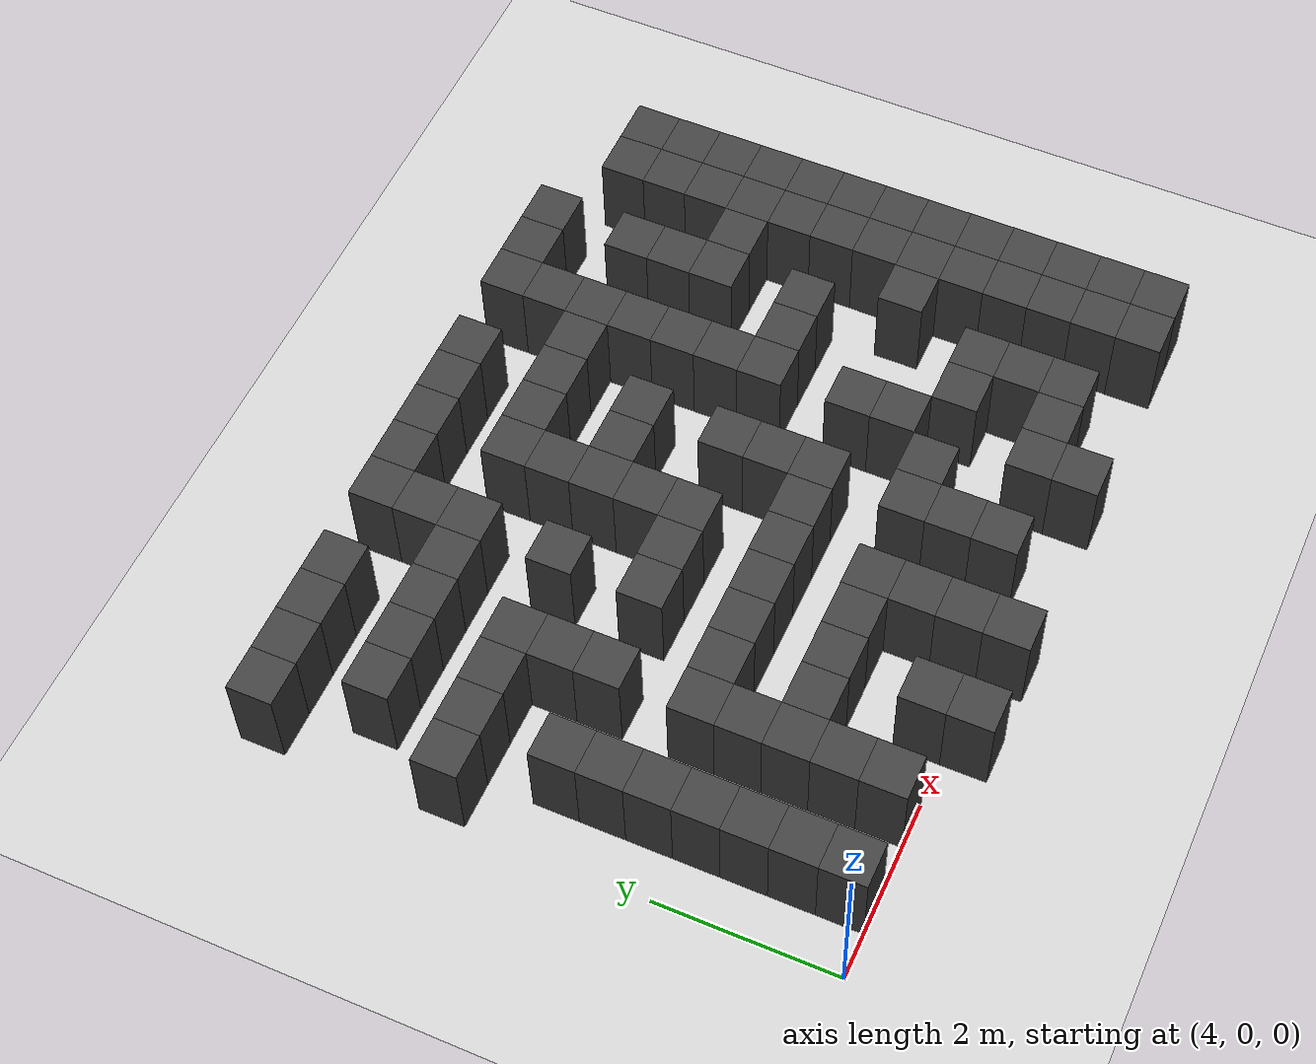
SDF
<sdf version="1.7">
 <world name="map_18332">
  <model name="ground_plane">
   <static>true</static>
   <link name="link">
    <collision name="collision">
     <geometry><plane><normal>0 0 1</normal><size>200 200</size></plane></geometry>
    </collision>
    <visual name="visual">
     <geometry><plane><normal>0 0 1</normal><size>200 200</size></plane></geometry>
     <material><ambient>0.8 0.8 0.8 1</ambient><diffuse>0.8 0.8 0.8 1</diffuse></material>
    </visual>
   </link>
  </model>
  <model name="maze_environment">
   <static>true</static>
   <link name="wall_333">
    <pose>4.250 6.250 0.500 0 0 0</pose>
    <collision name="col"><geometry><box><size>0.5 0.5 1.0</size></box></geometry></collision>
    <visual name="vis">
     <geometry><box><size>0.5 0.5 1.0</size></box></geometry>
     <material><ambient>0.15 0.15 0.15 1</ambient><diffuse>0.25 0.25 0.25 1</diffuse></material>
    </visual>
   </link>
   <link name="wall_334">
    <pose>4.750 6.250 0.500 0 0 0</pose>
    <collision name="col"><geometry><box><size>0.5 0.5 1.0</size></box></geometry></collision>
    <visual name="vis">
     <geometry><box><size>0.5 0.5 1.0</size></box></geometry>
     <material><ambient>0.15 0.15 0.15 1</ambient><diffuse>0.25 0.25 0.25 1</diffuse></material>
    </visual>
   </link>
   <link name="wall_335">
    <pose>5.250 6.250 0.500 0 0 0</pose>
    <collision name="col"><geometry><box><size>0.5 0.5 1.0</size></box></geometry></collision>
    <visual name="vis">
     <geometry><box><size>0.5 0.5 1.0</size></box></geometry>
     <material><ambient>0.15 0.15 0.15 1</ambient><diffuse>0.25 0.25 0.25 1</diffuse></material>
    </visual>
   </link>
   <link name="wall_336">
    <pose>5.750 6.250 0.500 0 0 0</pose>
    <collision name="col"><geometry><box><size>0.5 0.5 1.0</size></box></geometry></collision>
    <visual name="vis">
     <geometry><box><size>0.5 0.5 1.0</size></box></geometry>
     <material><ambient>0.15 0.15 0.15 1</ambient><diffuse>0.25 0.25 0.25 1</diffuse></material>
    </visual>
   </link>
   <link name="wall_337">
    <pose>6.750 6.250 0.500 0 0 0</pose>
    <collision name="col"><geometry><box><size>0.5 0.5 1.0</size></box></geometry></collision>
    <visual name="vis">
     <geometry><box><size>0.5 0.5 1.0</size></box></geometry>
     <material><ambient>0.15 0.15 0.15 1</ambient><diffuse>0.25 0.25 0.25 1</diffuse></material>
    </visual>
   </link>
   <link name="wall_338">
    <pose>7.250 6.250 0.500 0 0 0</pose>
    <collision name="col"><geometry><box><size>0.5 0.5 1.0</size></box></geometry></collision>
    <visual name="vis">
     <geometry><box><size>0.5 0.5 1.0</size></box></geometry>
     <material><ambient>0.15 0.15 0.15 1</ambient><diffuse>0.25 0.25 0.25 1</diffuse></material>
    </visual>
   </link>
   <link name="wall_339">
    <pose>7.750 6.250 0.500 0 0 0</pose>
    <collision name="col"><geometry><box><size>0.5 0.5 1.0</size></box></geometry></collision>
    <visual name="vis">
     <geometry><box><size>0.5 0.5 1.0</size></box></geometry>
     <material><ambient>0.15 0.15 0.15 1</ambient><diffuse>0.25 0.25 0.25 1</diffuse></material>
    </visual>
   </link>
   <link name="wall_340">
    <pose>8.250 6.250 0.500 0 0 0</pose>
    <collision name="col"><geometry><box><size>0.5 0.5 1.0</size></box></geometry></collision>
    <visual name="vis">
     <geometry><box><size>0.5 0.5 1.0</size></box></geometry>
     <material><ambient>0.15 0.15 0.15 1</ambient><diffuse>0.25 0.25 0.25 1</diffuse></material>
    </visual>
   </link>
   <link name="wall_341">
    <pose>8.750 6.250 0.500 0 0 0</pose>
    <collision name="col"><geometry><box><size>0.5 0.5 1.0</size></box></geometry></collision>
    <visual name="vis">
     <geometry><box><size>0.5 0.5 1.0</size></box></geometry>
     <material><ambient>0.15 0.15 0.15 1</ambient><diffuse>0.25 0.25 0.25 1</diffuse></material>
    </visual>
   </link>
   <link name="wall_342">
    <pose>9.750 6.250 0.500 0 0 0</pose>
    <collision name="col"><geometry><box><size>0.5 0.5 1.0</size></box></geometry></collision>
    <visual name="vis">
     <geometry><box><size>0.5 0.5 1.0</size></box></geometry>
     <material><ambient>0.15 0.15 0.15 1</ambient><diffuse>0.25 0.25 0.25 1</diffuse></material>
    </visual>
   </link>
   <link name="wall_343">
    <pose>10.250 6.250 0.500 0 0 0</pose>
    <collision name="col"><geometry><box><size>0.5 0.5 1.0</size></box></geometry></collision>
    <visual name="vis">
     <geometry><box><size>0.5 0.5 1.0</size></box></geometry>
     <material><ambient>0.15 0.15 0.15 1</ambient><diffuse>0.25 0.25 0.25 1</diffuse></material>
    </visual>
   </link>
   <link name="wall_344">
    <pose>10.750 6.250 0.500 0 0 0</pose>
    <collision name="col"><geometry><box><size>0.5 0.5 1.0</size></box></geometry></collision>
    <visual name="vis">
     <geometry><box><size>0.5 0.5 1.0</size></box></geometry>
     <material><ambient>0.15 0.15 0.15 1</ambient><diffuse>0.25 0.25 0.25 1</diffuse></material>
    </visual>
   </link>
   <link name="wall_357">
    <pose>6.750 5.750 0.500 0 0 0</pose>
    <collision name="col"><geometry><box><size>0.5 0.5 1.0</size></box></geometry></collision>
    <visual name="vis">
     <geometry><box><size>0.5 0.5 1.0</size></box></geometry>
     <material><ambient>0.15 0.15 0.15 1</ambient><diffuse>0.25 0.25 0.25 1</diffuse></material>
    </visual>
   </link>
   <link name="wall_358">
    <pose>9.750 5.750 0.500 0 0 0</pose>
    <collision name="col"><geometry><box><size>0.5 0.5 1.0</size></box></geometry></collision>
    <visual name="vis">
     <geometry><box><size>0.5 0.5 1.0</size></box></geometry>
     <material><ambient>0.15 0.15 0.15 1</ambient><diffuse>0.25 0.25 0.25 1</diffuse></material>
    </visual>
   </link>
   <link name="wall_359">
    <pose>11.750 5.750 0.500 0 0 0</pose>
    <collision name="col"><geometry><box><size>0.5 0.5 1.0</size></box></geometry></collision>
    <visual name="vis">
     <geometry><box><size>0.5 0.5 1.0</size></box></geometry>
     <material><ambient>0.15 0.15 0.15 1</ambient><diffuse>0.25 0.25 0.25 1</diffuse></material>
    </visual>
   </link>
   <link name="wall_360">
    <pose>12.250 5.750 0.500 0 0 0</pose>
    <collision name="col"><geometry><box><size>0.5 0.5 1.0</size></box></geometry></collision>
    <visual name="vis">
     <geometry><box><size>0.5 0.5 1.0</size></box></geometry>
     <material><ambient>0.15 0.15 0.15 1</ambient><diffuse>0.25 0.25 0.25 1</diffuse></material>
    </visual>
   </link>
   <link name="wall_380">
    <pose>4.750 5.250 0.500 0 0 0</pose>
    <collision name="col"><geometry><box><size>0.5 0.5 1.0</size></box></geometry></collision>
    <visual name="vis">
     <geometry><box><size>0.5 0.5 1.0</size></box></geometry>
     <material><ambient>0.15 0.15 0.15 1</ambient><diffuse>0.25 0.25 0.25 1</diffuse></material>
    </visual>
   </link>
   <link name="wall_381">
    <pose>5.250 5.250 0.500 0 0 0</pose>
    <collision name="col"><geometry><box><size>0.5 0.5 1.0</size></box></geometry></collision>
    <visual name="vis">
     <geometry><box><size>0.5 0.5 1.0</size></box></geometry>
     <material><ambient>0.15 0.15 0.15 1</ambient><diffuse>0.25 0.25 0.25 1</diffuse></material>
    </visual>
   </link>
   <link name="wall_382">
    <pose>5.750 5.250 0.500 0 0 0</pose>
    <collision name="col"><geometry><box><size>0.5 0.5 1.0</size></box></geometry></collision>
    <visual name="vis">
     <geometry><box><size>0.5 0.5 1.0</size></box></geometry>
     <material><ambient>0.15 0.15 0.15 1</ambient><diffuse>0.25 0.25 0.25 1</diffuse></material>
    </visual>
   </link>
   <link name="wall_383">
    <pose>6.250 5.250 0.500 0 0 0</pose>
    <collision name="col"><geometry><box><size>0.5 0.5 1.0</size></box></geometry></collision>
    <visual name="vis">
     <geometry><box><size>0.5 0.5 1.0</size></box></geometry>
     <material><ambient>0.15 0.15 0.15 1</ambient><diffuse>0.25 0.25 0.25 1</diffuse></material>
    </visual>
   </link>
   <link name="wall_384">
    <pose>6.750 5.250 0.500 0 0 0</pose>
    <collision name="col"><geometry><box><size>0.5 0.5 1.0</size></box></geometry></collision>
    <visual name="vis">
     <geometry><box><size>0.5 0.5 1.0</size></box></geometry>
     <material><ambient>0.15 0.15 0.15 1</ambient><diffuse>0.25 0.25 0.25 1</diffuse></material>
    </visual>
   </link>
   <link name="wall_385">
    <pose>7.750 5.250 0.500 0 0 0</pose>
    <collision name="col"><geometry><box><size>0.5 0.5 1.0</size></box></geometry></collision>
    <visual name="vis">
     <geometry><box><size>0.5 0.5 1.0</size></box></geometry>
     <material><ambient>0.15 0.15 0.15 1</ambient><diffuse>0.25 0.25 0.25 1</diffuse></material>
    </visual>
   </link>
   <link name="wall_386">
    <pose>8.250 5.250 0.500 0 0 0</pose>
    <collision name="col"><geometry><box><size>0.5 0.5 1.0</size></box></geometry></collision>
    <visual name="vis">
     <geometry><box><size>0.5 0.5 1.0</size></box></geometry>
     <material><ambient>0.15 0.15 0.15 1</ambient><diffuse>0.25 0.25 0.25 1</diffuse></material>
    </visual>
   </link>
   <link name="wall_387">
    <pose>8.750 5.250 0.500 0 0 0</pose>
    <collision name="col"><geometry><box><size>0.5 0.5 1.0</size></box></geometry></collision>
    <visual name="vis">
     <geometry><box><size>0.5 0.5 1.0</size></box></geometry>
     <material><ambient>0.15 0.15 0.15 1</ambient><diffuse>0.25 0.25 0.25 1</diffuse></material>
    </visual>
   </link>
   <link name="wall_388">
    <pose>9.250 5.250 0.500 0 0 0</pose>
    <collision name="col"><geometry><box><size>0.5 0.5 1.0</size></box></geometry></collision>
    <visual name="vis">
     <geometry><box><size>0.5 0.5 1.0</size></box></geometry>
     <material><ambient>0.15 0.15 0.15 1</ambient><diffuse>0.25 0.25 0.25 1</diffuse></material>
    </visual>
   </link>
   <link name="wall_389">
    <pose>9.750 5.250 0.500 0 0 0</pose>
    <collision name="col"><geometry><box><size>0.5 0.5 1.0</size></box></geometry></collision>
    <visual name="vis">
     <geometry><box><size>0.5 0.5 1.0</size></box></geometry>
     <material><ambient>0.15 0.15 0.15 1</ambient><diffuse>0.25 0.25 0.25 1</diffuse></material>
    </visual>
   </link>
   <link name="wall_390">
    <pose>10.750 5.250 0.500 0 0 0</pose>
    <collision name="col"><geometry><box><size>0.5 0.5 1.0</size></box></geometry></collision>
    <visual name="vis">
     <geometry><box><size>0.5 0.5 1.0</size></box></geometry>
     <material><ambient>0.15 0.15 0.15 1</ambient><diffuse>0.25 0.25 0.25 1</diffuse></material>
    </visual>
   </link>
   <link name="wall_391">
    <pose>11.750 5.250 0.500 0 0 0</pose>
    <collision name="col"><geometry><box><size>0.5 0.5 1.0</size></box></geometry></collision>
    <visual name="vis">
     <geometry><box><size>0.5 0.5 1.0</size></box></geometry>
     <material><ambient>0.15 0.15 0.15 1</ambient><diffuse>0.25 0.25 0.25 1</diffuse></material>
    </visual>
   </link>
   <link name="wall_392">
    <pose>12.250 5.250 0.500 0 0 0</pose>
    <collision name="col"><geometry><box><size>0.5 0.5 1.0</size></box></geometry></collision>
    <visual name="vis">
     <geometry><box><size>0.5 0.5 1.0</size></box></geometry>
     <material><ambient>0.15 0.15 0.15 1</ambient><diffuse>0.25 0.25 0.25 1</diffuse></material>
    </visual>
   </link>
   <link name="wall_403">
    <pose>7.750 4.750 0.500 0 0 0</pose>
    <collision name="col"><geometry><box><size>0.5 0.5 1.0</size></box></geometry></collision>
    <visual name="vis">
     <geometry><box><size>0.5 0.5 1.0</size></box></geometry>
     <material><ambient>0.15 0.15 0.15 1</ambient><diffuse>0.25 0.25 0.25 1</diffuse></material>
    </visual>
   </link>
   <link name="wall_404">
    <pose>9.750 4.750 0.500 0 0 0</pose>
    <collision name="col"><geometry><box><size>0.5 0.5 1.0</size></box></geometry></collision>
    <visual name="vis">
     <geometry><box><size>0.5 0.5 1.0</size></box></geometry>
     <material><ambient>0.15 0.15 0.15 1</ambient><diffuse>0.25 0.25 0.25 1</diffuse></material>
    </visual>
   </link>
   <link name="wall_405">
    <pose>10.750 4.750 0.500 0 0 0</pose>
    <collision name="col"><geometry><box><size>0.5 0.5 1.0</size></box></geometry></collision>
    <visual name="vis">
     <geometry><box><size>0.5 0.5 1.0</size></box></geometry>
     <material><ambient>0.15 0.15 0.15 1</ambient><diffuse>0.25 0.25 0.25 1</diffuse></material>
    </visual>
   </link>
   <link name="wall_406">
    <pose>11.750 4.750 0.500 0 0 0</pose>
    <collision name="col"><geometry><box><size>0.5 0.5 1.0</size></box></geometry></collision>
    <visual name="vis">
     <geometry><box><size>0.5 0.5 1.0</size></box></geometry>
     <material><ambient>0.15 0.15 0.15 1</ambient><diffuse>0.25 0.25 0.25 1</diffuse></material>
    </visual>
   </link>
   <link name="wall_407">
    <pose>12.250 4.750 0.500 0 0 0</pose>
    <collision name="col"><geometry><box><size>0.5 0.5 1.0</size></box></geometry></collision>
    <visual name="vis">
     <geometry><box><size>0.5 0.5 1.0</size></box></geometry>
     <material><ambient>0.15 0.15 0.15 1</ambient><diffuse>0.25 0.25 0.25 1</diffuse></material>
    </visual>
   </link>
   <link name="wall_434">
    <pose>4.250 4.250 0.500 0 0 0</pose>
    <collision name="col"><geometry><box><size>0.5 0.5 1.0</size></box></geometry></collision>
    <visual name="vis">
     <geometry><box><size>0.5 0.5 1.0</size></box></geometry>
     <material><ambient>0.15 0.15 0.15 1</ambient><diffuse>0.25 0.25 0.25 1</diffuse></material>
    </visual>
   </link>
   <link name="wall_435">
    <pose>4.750 4.250 0.500 0 0 0</pose>
    <collision name="col"><geometry><box><size>0.5 0.5 1.0</size></box></geometry></collision>
    <visual name="vis">
     <geometry><box><size>0.5 0.5 1.0</size></box></geometry>
     <material><ambient>0.15 0.15 0.15 1</ambient><diffuse>0.25 0.25 0.25 1</diffuse></material>
    </visual>
   </link>
   <link name="wall_436">
    <pose>5.250 4.250 0.500 0 0 0</pose>
    <collision name="col"><geometry><box><size>0.5 0.5 1.0</size></box></geometry></collision>
    <visual name="vis">
     <geometry><box><size>0.5 0.5 1.0</size></box></geometry>
     <material><ambient>0.15 0.15 0.15 1</ambient><diffuse>0.25 0.25 0.25 1</diffuse></material>
    </visual>
   </link>
   <link name="wall_437">
    <pose>5.750 4.250 0.500 0 0 0</pose>
    <collision name="col"><geometry><box><size>0.5 0.5 1.0</size></box></geometry></collision>
    <visual name="vis">
     <geometry><box><size>0.5 0.5 1.0</size></box></geometry>
     <material><ambient>0.15 0.15 0.15 1</ambient><diffuse>0.25 0.25 0.25 1</diffuse></material>
    </visual>
   </link>
   <link name="wall_438">
    <pose>6.750 4.250 0.500 0 0 0</pose>
    <collision name="col"><geometry><box><size>0.5 0.5 1.0</size></box></geometry></collision>
    <visual name="vis">
     <geometry><box><size>0.5 0.5 1.0</size></box></geometry>
     <material><ambient>0.15 0.15 0.15 1</ambient><diffuse>0.25 0.25 0.25 1</diffuse></material>
    </visual>
   </link>
   <link name="wall_439">
    <pose>7.750 4.250 0.500 0 0 0</pose>
    <collision name="col"><geometry><box><size>0.5 0.5 1.0</size></box></geometry></collision>
    <visual name="vis">
     <geometry><box><size>0.5 0.5 1.0</size></box></geometry>
     <material><ambient>0.15 0.15 0.15 1</ambient><diffuse>0.25 0.25 0.25 1</diffuse></material>
    </visual>
   </link>
   <link name="wall_440">
    <pose>8.250 4.250 0.500 0 0 0</pose>
    <collision name="col"><geometry><box><size>0.5 0.5 1.0</size></box></geometry></collision>
    <visual name="vis">
     <geometry><box><size>0.5 0.5 1.0</size></box></geometry>
     <material><ambient>0.15 0.15 0.15 1</ambient><diffuse>0.25 0.25 0.25 1</diffuse></material>
    </visual>
   </link>
   <link name="wall_441">
    <pose>8.750 4.250 0.500 0 0 0</pose>
    <collision name="col"><geometry><box><size>0.5 0.5 1.0</size></box></geometry></collision>
    <visual name="vis">
     <geometry><box><size>0.5 0.5 1.0</size></box></geometry>
     <material><ambient>0.15 0.15 0.15 1</ambient><diffuse>0.25 0.25 0.25 1</diffuse></material>
    </visual>
   </link>
   <link name="wall_442">
    <pose>9.750 4.250 0.500 0 0 0</pose>
    <collision name="col"><geometry><box><size>0.5 0.5 1.0</size></box></geometry></collision>
    <visual name="vis">
     <geometry><box><size>0.5 0.5 1.0</size></box></geometry>
     <material><ambient>0.15 0.15 0.15 1</ambient><diffuse>0.25 0.25 0.25 1</diffuse></material>
    </visual>
   </link>
   <link name="wall_443">
    <pose>10.750 4.250 0.500 0 0 0</pose>
    <collision name="col"><geometry><box><size>0.5 0.5 1.0</size></box></geometry></collision>
    <visual name="vis">
     <geometry><box><size>0.5 0.5 1.0</size></box></geometry>
     <material><ambient>0.15 0.15 0.15 1</ambient><diffuse>0.25 0.25 0.25 1</diffuse></material>
    </visual>
   </link>
   <link name="wall_444">
    <pose>11.250 4.250 0.500 0 0 0</pose>
    <collision name="col"><geometry><box><size>0.5 0.5 1.0</size></box></geometry></collision>
    <visual name="vis">
     <geometry><box><size>0.5 0.5 1.0</size></box></geometry>
     <material><ambient>0.15 0.15 0.15 1</ambient><diffuse>0.25 0.25 0.25 1</diffuse></material>
    </visual>
   </link>
   <link name="wall_445">
    <pose>11.750 4.250 0.500 0 0 0</pose>
    <collision name="col"><geometry><box><size>0.5 0.5 1.0</size></box></geometry></collision>
    <visual name="vis">
     <geometry><box><size>0.5 0.5 1.0</size></box></geometry>
     <material><ambient>0.15 0.15 0.15 1</ambient><diffuse>0.25 0.25 0.25 1</diffuse></material>
    </visual>
   </link>
   <link name="wall_446">
    <pose>12.250 4.250 0.500 0 0 0</pose>
    <collision name="col"><geometry><box><size>0.5 0.5 1.0</size></box></geometry></collision>
    <visual name="vis">
     <geometry><box><size>0.5 0.5 1.0</size></box></geometry>
     <material><ambient>0.15 0.15 0.15 1</ambient><diffuse>0.25 0.25 0.25 1</diffuse></material>
    </visual>
   </link>
   <link name="wall_455">
    <pose>5.750 3.750 0.500 0 0 0</pose>
    <collision name="col"><geometry><box><size>0.5 0.5 1.0</size></box></geometry></collision>
    <visual name="vis">
     <geometry><box><size>0.5 0.5 1.0</size></box></geometry>
     <material><ambient>0.15 0.15 0.15 1</ambient><diffuse>0.25 0.25 0.25 1</diffuse></material>
    </visual>
   </link>
   <link name="wall_456">
    <pose>7.750 3.750 0.500 0 0 0</pose>
    <collision name="col"><geometry><box><size>0.5 0.5 1.0</size></box></geometry></collision>
    <visual name="vis">
     <geometry><box><size>0.5 0.5 1.0</size></box></geometry>
     <material><ambient>0.15 0.15 0.15 1</ambient><diffuse>0.25 0.25 0.25 1</diffuse></material>
    </visual>
   </link>
   <link name="wall_457">
    <pose>9.750 3.750 0.500 0 0 0</pose>
    <collision name="col"><geometry><box><size>0.5 0.5 1.0</size></box></geometry></collision>
    <visual name="vis">
     <geometry><box><size>0.5 0.5 1.0</size></box></geometry>
     <material><ambient>0.15 0.15 0.15 1</ambient><diffuse>0.25 0.25 0.25 1</diffuse></material>
    </visual>
   </link>
   <link name="wall_458">
    <pose>11.750 3.750 0.500 0 0 0</pose>
    <collision name="col"><geometry><box><size>0.5 0.5 1.0</size></box></geometry></collision>
    <visual name="vis">
     <geometry><box><size>0.5 0.5 1.0</size></box></geometry>
     <material><ambient>0.15 0.15 0.15 1</ambient><diffuse>0.25 0.25 0.25 1</diffuse></material>
    </visual>
   </link>
   <link name="wall_459">
    <pose>12.250 3.750 0.500 0 0 0</pose>
    <collision name="col"><geometry><box><size>0.5 0.5 1.0</size></box></geometry></collision>
    <visual name="vis">
     <geometry><box><size>0.5 0.5 1.0</size></box></geometry>
     <material><ambient>0.15 0.15 0.15 1</ambient><diffuse>0.25 0.25 0.25 1</diffuse></material>
    </visual>
   </link>
   <link name="wall_485">
    <pose>4.750 3.250 0.500 0 0 0</pose>
    <collision name="col"><geometry><box><size>0.5 0.5 1.0</size></box></geometry></collision>
    <visual name="vis">
     <geometry><box><size>0.5 0.5 1.0</size></box></geometry>
     <material><ambient>0.15 0.15 0.15 1</ambient><diffuse>0.25 0.25 0.25 1</diffuse></material>
    </visual>
   </link>
   <link name="wall_486">
    <pose>5.750 3.250 0.500 0 0 0</pose>
    <collision name="col"><geometry><box><size>0.5 0.5 1.0</size></box></geometry></collision>
    <visual name="vis">
     <geometry><box><size>0.5 0.5 1.0</size></box></geometry>
     <material><ambient>0.15 0.15 0.15 1</ambient><diffuse>0.25 0.25 0.25 1</diffuse></material>
    </visual>
   </link>
   <link name="wall_487">
    <pose>6.750 3.250 0.500 0 0 0</pose>
    <collision name="col"><geometry><box><size>0.5 0.5 1.0</size></box></geometry></collision>
    <visual name="vis">
     <geometry><box><size>0.5 0.5 1.0</size></box></geometry>
     <material><ambient>0.15 0.15 0.15 1</ambient><diffuse>0.25 0.25 0.25 1</diffuse></material>
    </visual>
   </link>
   <link name="wall_488">
    <pose>7.250 3.250 0.500 0 0 0</pose>
    <collision name="col"><geometry><box><size>0.5 0.5 1.0</size></box></geometry></collision>
    <visual name="vis">
     <geometry><box><size>0.5 0.5 1.0</size></box></geometry>
     <material><ambient>0.15 0.15 0.15 1</ambient><diffuse>0.25 0.25 0.25 1</diffuse></material>
    </visual>
   </link>
   <link name="wall_489">
    <pose>7.750 3.250 0.500 0 0 0</pose>
    <collision name="col"><geometry><box><size>0.5 0.5 1.0</size></box></geometry></collision>
    <visual name="vis">
     <geometry><box><size>0.5 0.5 1.0</size></box></geometry>
     <material><ambient>0.15 0.15 0.15 1</ambient><diffuse>0.25 0.25 0.25 1</diffuse></material>
    </visual>
   </link>
   <link name="wall_490">
    <pose>8.750 3.250 0.500 0 0 0</pose>
    <collision name="col"><geometry><box><size>0.5 0.5 1.0</size></box></geometry></collision>
    <visual name="vis">
     <geometry><box><size>0.5 0.5 1.0</size></box></geometry>
     <material><ambient>0.15 0.15 0.15 1</ambient><diffuse>0.25 0.25 0.25 1</diffuse></material>
    </visual>
   </link>
   <link name="wall_491">
    <pose>9.750 3.250 0.500 0 0 0</pose>
    <collision name="col"><geometry><box><size>0.5 0.5 1.0</size></box></geometry></collision>
    <visual name="vis">
     <geometry><box><size>0.5 0.5 1.0</size></box></geometry>
     <material><ambient>0.15 0.15 0.15 1</ambient><diffuse>0.25 0.25 0.25 1</diffuse></material>
    </visual>
   </link>
   <link name="wall_492">
    <pose>10.250 3.250 0.500 0 0 0</pose>
    <collision name="col"><geometry><box><size>0.5 0.5 1.0</size></box></geometry></collision>
    <visual name="vis">
     <geometry><box><size>0.5 0.5 1.0</size></box></geometry>
     <material><ambient>0.15 0.15 0.15 1</ambient><diffuse>0.25 0.25 0.25 1</diffuse></material>
    </visual>
   </link>
   <link name="wall_493">
    <pose>10.750 3.250 0.500 0 0 0</pose>
    <collision name="col"><geometry><box><size>0.5 0.5 1.0</size></box></geometry></collision>
    <visual name="vis">
     <geometry><box><size>0.5 0.5 1.0</size></box></geometry>
     <material><ambient>0.15 0.15 0.15 1</ambient><diffuse>0.25 0.25 0.25 1</diffuse></material>
    </visual>
   </link>
   <link name="wall_494">
    <pose>11.750 3.250 0.500 0 0 0</pose>
    <collision name="col"><geometry><box><size>0.5 0.5 1.0</size></box></geometry></collision>
    <visual name="vis">
     <geometry><box><size>0.5 0.5 1.0</size></box></geometry>
     <material><ambient>0.15 0.15 0.15 1</ambient><diffuse>0.25 0.25 0.25 1</diffuse></material>
    </visual>
   </link>
   <link name="wall_495">
    <pose>12.250 3.250 0.500 0 0 0</pose>
    <collision name="col"><geometry><box><size>0.5 0.5 1.0</size></box></geometry></collision>
    <visual name="vis">
     <geometry><box><size>0.5 0.5 1.0</size></box></geometry>
     <material><ambient>0.15 0.15 0.15 1</ambient><diffuse>0.25 0.25 0.25 1</diffuse></material>
    </visual>
   </link>
   <link name="wall_505">
    <pose>4.750 2.750 0.500 0 0 0</pose>
    <collision name="col"><geometry><box><size>0.5 0.5 1.0</size></box></geometry></collision>
    <visual name="vis">
     <geometry><box><size>0.5 0.5 1.0</size></box></geometry>
     <material><ambient>0.15 0.15 0.15 1</ambient><diffuse>0.25 0.25 0.25 1</diffuse></material>
    </visual>
   </link>
   <link name="wall_506">
    <pose>8.750 2.750 0.500 0 0 0</pose>
    <collision name="col"><geometry><box><size>0.5 0.5 1.0</size></box></geometry></collision>
    <visual name="vis">
     <geometry><box><size>0.5 0.5 1.0</size></box></geometry>
     <material><ambient>0.15 0.15 0.15 1</ambient><diffuse>0.25 0.25 0.25 1</diffuse></material>
    </visual>
   </link>
   <link name="wall_507">
    <pose>11.750 2.750 0.500 0 0 0</pose>
    <collision name="col"><geometry><box><size>0.5 0.5 1.0</size></box></geometry></collision>
    <visual name="vis">
     <geometry><box><size>0.5 0.5 1.0</size></box></geometry>
     <material><ambient>0.15 0.15 0.15 1</ambient><diffuse>0.25 0.25 0.25 1</diffuse></material>
    </visual>
   </link>
   <link name="wall_508">
    <pose>12.250 2.750 0.500 0 0 0</pose>
    <collision name="col"><geometry><box><size>0.5 0.5 1.0</size></box></geometry></collision>
    <visual name="vis">
     <geometry><box><size>0.5 0.5 1.0</size></box></geometry>
     <material><ambient>0.15 0.15 0.15 1</ambient><diffuse>0.25 0.25 0.25 1</diffuse></material>
    </visual>
   </link>
   <link name="wall_532">
    <pose>4.750 2.250 0.500 0 0 0</pose>
    <collision name="col"><geometry><box><size>0.5 0.5 1.0</size></box></geometry></collision>
    <visual name="vis">
     <geometry><box><size>0.5 0.5 1.0</size></box></geometry>
     <material><ambient>0.15 0.15 0.15 1</ambient><diffuse>0.25 0.25 0.25 1</diffuse></material>
    </visual>
   </link>
   <link name="wall_533">
    <pose>5.750 2.250 0.500 0 0 0</pose>
    <collision name="col"><geometry><box><size>0.5 0.5 1.0</size></box></geometry></collision>
    <visual name="vis">
     <geometry><box><size>0.5 0.5 1.0</size></box></geometry>
     <material><ambient>0.15 0.15 0.15 1</ambient><diffuse>0.25 0.25 0.25 1</diffuse></material>
    </visual>
   </link>
   <link name="wall_534">
    <pose>6.250 2.250 0.500 0 0 0</pose>
    <collision name="col"><geometry><box><size>0.5 0.5 1.0</size></box></geometry></collision>
    <visual name="vis">
     <geometry><box><size>0.5 0.5 1.0</size></box></geometry>
     <material><ambient>0.15 0.15 0.15 1</ambient><diffuse>0.25 0.25 0.25 1</diffuse></material>
    </visual>
   </link>
   <link name="wall_535">
    <pose>6.750 2.250 0.500 0 0 0</pose>
    <collision name="col"><geometry><box><size>0.5 0.5 1.0</size></box></geometry></collision>
    <visual name="vis">
     <geometry><box><size>0.5 0.5 1.0</size></box></geometry>
     <material><ambient>0.15 0.15 0.15 1</ambient><diffuse>0.25 0.25 0.25 1</diffuse></material>
    </visual>
   </link>
   <link name="wall_536">
    <pose>7.250 2.250 0.500 0 0 0</pose>
    <collision name="col"><geometry><box><size>0.5 0.5 1.0</size></box></geometry></collision>
    <visual name="vis">
     <geometry><box><size>0.5 0.5 1.0</size></box></geometry>
     <material><ambient>0.15 0.15 0.15 1</ambient><diffuse>0.25 0.25 0.25 1</diffuse></material>
    </visual>
   </link>
   <link name="wall_537">
    <pose>7.750 2.250 0.500 0 0 0</pose>
    <collision name="col"><geometry><box><size>0.5 0.5 1.0</size></box></geometry></collision>
    <visual name="vis">
     <geometry><box><size>0.5 0.5 1.0</size></box></geometry>
     <material><ambient>0.15 0.15 0.15 1</ambient><diffuse>0.25 0.25 0.25 1</diffuse></material>
    </visual>
   </link>
   <link name="wall_538">
    <pose>8.250 2.250 0.500 0 0 0</pose>
    <collision name="col"><geometry><box><size>0.5 0.5 1.0</size></box></geometry></collision>
    <visual name="vis">
     <geometry><box><size>0.5 0.5 1.0</size></box></geometry>
     <material><ambient>0.15 0.15 0.15 1</ambient><diffuse>0.25 0.25 0.25 1</diffuse></material>
    </visual>
   </link>
   <link name="wall_539">
    <pose>8.750 2.250 0.500 0 0 0</pose>
    <collision name="col"><geometry><box><size>0.5 0.5 1.0</size></box></geometry></collision>
    <visual name="vis">
     <geometry><box><size>0.5 0.5 1.0</size></box></geometry>
     <material><ambient>0.15 0.15 0.15 1</ambient><diffuse>0.25 0.25 0.25 1</diffuse></material>
    </visual>
   </link>
   <link name="wall_540">
    <pose>9.750 2.250 0.500 0 0 0</pose>
    <collision name="col"><geometry><box><size>0.5 0.5 1.0</size></box></geometry></collision>
    <visual name="vis">
     <geometry><box><size>0.5 0.5 1.0</size></box></geometry>
     <material><ambient>0.15 0.15 0.15 1</ambient><diffuse>0.25 0.25 0.25 1</diffuse></material>
    </visual>
   </link>
   <link name="wall_541">
    <pose>11.250 2.250 0.500 0 0 0</pose>
    <collision name="col"><geometry><box><size>0.5 0.5 1.0</size></box></geometry></collision>
    <visual name="vis">
     <geometry><box><size>0.5 0.5 1.0</size></box></geometry>
     <material><ambient>0.15 0.15 0.15 1</ambient><diffuse>0.25 0.25 0.25 1</diffuse></material>
    </visual>
   </link>
   <link name="wall_542">
    <pose>11.750 2.250 0.500 0 0 0</pose>
    <collision name="col"><geometry><box><size>0.5 0.5 1.0</size></box></geometry></collision>
    <visual name="vis">
     <geometry><box><size>0.5 0.5 1.0</size></box></geometry>
     <material><ambient>0.15 0.15 0.15 1</ambient><diffuse>0.25 0.25 0.25 1</diffuse></material>
    </visual>
   </link>
   <link name="wall_543">
    <pose>12.250 2.250 0.500 0 0 0</pose>
    <collision name="col"><geometry><box><size>0.5 0.5 1.0</size></box></geometry></collision>
    <visual name="vis">
     <geometry><box><size>0.5 0.5 1.0</size></box></geometry>
     <material><ambient>0.15 0.15 0.15 1</ambient><diffuse>0.25 0.25 0.25 1</diffuse></material>
    </visual>
   </link>
   <link name="wall_553">
    <pose>4.750 1.750 0.500 0 0 0</pose>
    <collision name="col"><geometry><box><size>0.5 0.5 1.0</size></box></geometry></collision>
    <visual name="vis">
     <geometry><box><size>0.5 0.5 1.0</size></box></geometry>
     <material><ambient>0.15 0.15 0.15 1</ambient><diffuse>0.25 0.25 0.25 1</diffuse></material>
    </visual>
   </link>
   <link name="wall_554">
    <pose>5.750 1.750 0.500 0 0 0</pose>
    <collision name="col"><geometry><box><size>0.5 0.5 1.0</size></box></geometry></collision>
    <visual name="vis">
     <geometry><box><size>0.5 0.5 1.0</size></box></geometry>
     <material><ambient>0.15 0.15 0.15 1</ambient><diffuse>0.25 0.25 0.25 1</diffuse></material>
    </visual>
   </link>
   <link name="wall_555">
    <pose>9.750 1.750 0.500 0 0 0</pose>
    <collision name="col"><geometry><box><size>0.5 0.5 1.0</size></box></geometry></collision>
    <visual name="vis">
     <geometry><box><size>0.5 0.5 1.0</size></box></geometry>
     <material><ambient>0.15 0.15 0.15 1</ambient><diffuse>0.25 0.25 0.25 1</diffuse></material>
    </visual>
   </link>
   <link name="wall_556">
    <pose>11.750 1.750 0.500 0 0 0</pose>
    <collision name="col"><geometry><box><size>0.5 0.5 1.0</size></box></geometry></collision>
    <visual name="vis">
     <geometry><box><size>0.5 0.5 1.0</size></box></geometry>
     <material><ambient>0.15 0.15 0.15 1</ambient><diffuse>0.25 0.25 0.25 1</diffuse></material>
    </visual>
   </link>
   <link name="wall_557">
    <pose>12.250 1.750 0.500 0 0 0</pose>
    <collision name="col"><geometry><box><size>0.5 0.5 1.0</size></box></geometry></collision>
    <visual name="vis">
     <geometry><box><size>0.5 0.5 1.0</size></box></geometry>
     <material><ambient>0.15 0.15 0.15 1</ambient><diffuse>0.25 0.25 0.25 1</diffuse></material>
    </visual>
   </link>
   <link name="wall_582">
    <pose>4.750 1.250 0.500 0 0 0</pose>
    <collision name="col"><geometry><box><size>0.5 0.5 1.0</size></box></geometry></collision>
    <visual name="vis">
     <geometry><box><size>0.5 0.5 1.0</size></box></geometry>
     <material><ambient>0.15 0.15 0.15 1</ambient><diffuse>0.25 0.25 0.25 1</diffuse></material>
    </visual>
   </link>
   <link name="wall_583">
    <pose>5.750 1.250 0.500 0 0 0</pose>
    <collision name="col"><geometry><box><size>0.5 0.5 1.0</size></box></geometry></collision>
    <visual name="vis">
     <geometry><box><size>0.5 0.5 1.0</size></box></geometry>
     <material><ambient>0.15 0.15 0.15 1</ambient><diffuse>0.25 0.25 0.25 1</diffuse></material>
    </visual>
   </link>
   <link name="wall_584">
    <pose>6.250 1.250 0.500 0 0 0</pose>
    <collision name="col"><geometry><box><size>0.5 0.5 1.0</size></box></geometry></collision>
    <visual name="vis">
     <geometry><box><size>0.5 0.5 1.0</size></box></geometry>
     <material><ambient>0.15 0.15 0.15 1</ambient><diffuse>0.25 0.25 0.25 1</diffuse></material>
    </visual>
   </link>
   <link name="wall_585">
    <pose>6.750 1.250 0.500 0 0 0</pose>
    <collision name="col"><geometry><box><size>0.5 0.5 1.0</size></box></geometry></collision>
    <visual name="vis">
     <geometry><box><size>0.5 0.5 1.0</size></box></geometry>
     <material><ambient>0.15 0.15 0.15 1</ambient><diffuse>0.25 0.25 0.25 1</diffuse></material>
    </visual>
   </link>
   <link name="wall_586">
    <pose>7.250 1.250 0.500 0 0 0</pose>
    <collision name="col"><geometry><box><size>0.5 0.5 1.0</size></box></geometry></collision>
    <visual name="vis">
     <geometry><box><size>0.5 0.5 1.0</size></box></geometry>
     <material><ambient>0.15 0.15 0.15 1</ambient><diffuse>0.25 0.25 0.25 1</diffuse></material>
    </visual>
   </link>
   <link name="wall_587">
    <pose>7.750 1.250 0.500 0 0 0</pose>
    <collision name="col"><geometry><box><size>0.5 0.5 1.0</size></box></geometry></collision>
    <visual name="vis">
     <geometry><box><size>0.5 0.5 1.0</size></box></geometry>
     <material><ambient>0.15 0.15 0.15 1</ambient><diffuse>0.25 0.25 0.25 1</diffuse></material>
    </visual>
   </link>
   <link name="wall_588">
    <pose>8.750 1.250 0.500 0 0 0</pose>
    <collision name="col"><geometry><box><size>0.5 0.5 1.0</size></box></geometry></collision>
    <visual name="vis">
     <geometry><box><size>0.5 0.5 1.0</size></box></geometry>
     <material><ambient>0.15 0.15 0.15 1</ambient><diffuse>0.25 0.25 0.25 1</diffuse></material>
    </visual>
   </link>
   <link name="wall_589">
    <pose>9.250 1.250 0.500 0 0 0</pose>
    <collision name="col"><geometry><box><size>0.5 0.5 1.0</size></box></geometry></collision>
    <visual name="vis">
     <geometry><box><size>0.5 0.5 1.0</size></box></geometry>
     <material><ambient>0.15 0.15 0.15 1</ambient><diffuse>0.25 0.25 0.25 1</diffuse></material>
    </visual>
   </link>
   <link name="wall_590">
    <pose>10.250 1.250 0.500 0 0 0</pose>
    <collision name="col"><geometry><box><size>0.5 0.5 1.0</size></box></geometry></collision>
    <visual name="vis">
     <geometry><box><size>0.5 0.5 1.0</size></box></geometry>
     <material><ambient>0.15 0.15 0.15 1</ambient><diffuse>0.25 0.25 0.25 1</diffuse></material>
    </visual>
   </link>
   <link name="wall_591">
    <pose>10.750 1.250 0.500 0 0 0</pose>
    <collision name="col"><geometry><box><size>0.5 0.5 1.0</size></box></geometry></collision>
    <visual name="vis">
     <geometry><box><size>0.5 0.5 1.0</size></box></geometry>
     <material><ambient>0.15 0.15 0.15 1</ambient><diffuse>0.25 0.25 0.25 1</diffuse></material>
    </visual>
   </link>
   <link name="wall_592">
    <pose>11.750 1.250 0.500 0 0 0</pose>
    <collision name="col"><geometry><box><size>0.5 0.5 1.0</size></box></geometry></collision>
    <visual name="vis">
     <geometry><box><size>0.5 0.5 1.0</size></box></geometry>
     <material><ambient>0.15 0.15 0.15 1</ambient><diffuse>0.25 0.25 0.25 1</diffuse></material>
    </visual>
   </link>
   <link name="wall_593">
    <pose>12.250 1.250 0.500 0 0 0</pose>
    <collision name="col"><geometry><box><size>0.5 0.5 1.0</size></box></geometry></collision>
    <visual name="vis">
     <geometry><box><size>0.5 0.5 1.0</size></box></geometry>
     <material><ambient>0.15 0.15 0.15 1</ambient><diffuse>0.25 0.25 0.25 1</diffuse></material>
    </visual>
   </link>
   <link name="wall_603">
    <pose>4.750 0.750 0.500 0 0 0</pose>
    <collision name="col"><geometry><box><size>0.5 0.5 1.0</size></box></geometry></collision>
    <visual name="vis">
     <geometry><box><size>0.5 0.5 1.0</size></box></geometry>
     <material><ambient>0.15 0.15 0.15 1</ambient><diffuse>0.25 0.25 0.25 1</diffuse></material>
    </visual>
   </link>
   <link name="wall_604">
    <pose>5.750 0.750 0.500 0 0 0</pose>
    <collision name="col"><geometry><box><size>0.5 0.5 1.0</size></box></geometry></collision>
    <visual name="vis">
     <geometry><box><size>0.5 0.5 1.0</size></box></geometry>
     <material><ambient>0.15 0.15 0.15 1</ambient><diffuse>0.25 0.25 0.25 1</diffuse></material>
    </visual>
   </link>
   <link name="wall_605">
    <pose>7.750 0.750 0.500 0 0 0</pose>
    <collision name="col"><geometry><box><size>0.5 0.5 1.0</size></box></geometry></collision>
    <visual name="vis">
     <geometry><box><size>0.5 0.5 1.0</size></box></geometry>
     <material><ambient>0.15 0.15 0.15 1</ambient><diffuse>0.25 0.25 0.25 1</diffuse></material>
    </visual>
   </link>
   <link name="wall_606">
    <pose>8.750 0.750 0.500 0 0 0</pose>
    <collision name="col"><geometry><box><size>0.5 0.5 1.0</size></box></geometry></collision>
    <visual name="vis">
     <geometry><box><size>0.5 0.5 1.0</size></box></geometry>
     <material><ambient>0.15 0.15 0.15 1</ambient><diffuse>0.25 0.25 0.25 1</diffuse></material>
    </visual>
   </link>
   <link name="wall_607">
    <pose>10.750 0.750 0.500 0 0 0</pose>
    <collision name="col"><geometry><box><size>0.5 0.5 1.0</size></box></geometry></collision>
    <visual name="vis">
     <geometry><box><size>0.5 0.5 1.0</size></box></geometry>
     <material><ambient>0.15 0.15 0.15 1</ambient><diffuse>0.25 0.25 0.25 1</diffuse></material>
    </visual>
   </link>
   <link name="wall_608">
    <pose>11.750 0.750 0.500 0 0 0</pose>
    <collision name="col"><geometry><box><size>0.5 0.5 1.0</size></box></geometry></collision>
    <visual name="vis">
     <geometry><box><size>0.5 0.5 1.0</size></box></geometry>
     <material><ambient>0.15 0.15 0.15 1</ambient><diffuse>0.25 0.25 0.25 1</diffuse></material>
    </visual>
   </link>
   <link name="wall_609">
    <pose>12.250 0.750 0.500 0 0 0</pose>
    <collision name="col"><geometry><box><size>0.5 0.5 1.0</size></box></geometry></collision>
    <visual name="vis">
     <geometry><box><size>0.5 0.5 1.0</size></box></geometry>
     <material><ambient>0.15 0.15 0.15 1</ambient><diffuse>0.25 0.25 0.25 1</diffuse></material>
    </visual>
   </link>
   <link name="wall_632">
    <pose>4.750 0.250 0.500 0 0 0</pose>
    <collision name="col"><geometry><box><size>0.5 0.5 1.0</size></box></geometry></collision>
    <visual name="vis">
     <geometry><box><size>0.5 0.5 1.0</size></box></geometry>
     <material><ambient>0.15 0.15 0.15 1</ambient><diffuse>0.25 0.25 0.25 1</diffuse></material>
    </visual>
   </link>
   <link name="wall_633">
    <pose>5.750 0.250 0.500 0 0 0</pose>
    <collision name="col"><geometry><box><size>0.5 0.5 1.0</size></box></geometry></collision>
    <visual name="vis">
     <geometry><box><size>0.5 0.5 1.0</size></box></geometry>
     <material><ambient>0.15 0.15 0.15 1</ambient><diffuse>0.25 0.25 0.25 1</diffuse></material>
    </visual>
   </link>
   <link name="wall_634">
    <pose>6.750 0.250 0.500 0 0 0</pose>
    <collision name="col"><geometry><box><size>0.5 0.5 1.0</size></box></geometry></collision>
    <visual name="vis">
     <geometry><box><size>0.5 0.5 1.0</size></box></geometry>
     <material><ambient>0.15 0.15 0.15 1</ambient><diffuse>0.25 0.25 0.25 1</diffuse></material>
    </visual>
   </link>
   <link name="wall_635">
    <pose>7.750 0.250 0.500 0 0 0</pose>
    <collision name="col"><geometry><box><size>0.5 0.5 1.0</size></box></geometry></collision>
    <visual name="vis">
     <geometry><box><size>0.5 0.5 1.0</size></box></geometry>
     <material><ambient>0.15 0.15 0.15 1</ambient><diffuse>0.25 0.25 0.25 1</diffuse></material>
    </visual>
   </link>
   <link name="wall_636">
    <pose>8.750 0.250 0.500 0 0 0</pose>
    <collision name="col"><geometry><box><size>0.5 0.5 1.0</size></box></geometry></collision>
    <visual name="vis">
     <geometry><box><size>0.5 0.5 1.0</size></box></geometry>
     <material><ambient>0.15 0.15 0.15 1</ambient><diffuse>0.25 0.25 0.25 1</diffuse></material>
    </visual>
   </link>
   <link name="wall_637">
    <pose>9.750 0.250 0.500 0 0 0</pose>
    <collision name="col"><geometry><box><size>0.5 0.5 1.0</size></box></geometry></collision>
    <visual name="vis">
     <geometry><box><size>0.5 0.5 1.0</size></box></geometry>
     <material><ambient>0.15 0.15 0.15 1</ambient><diffuse>0.25 0.25 0.25 1</diffuse></material>
    </visual>
   </link>
   <link name="wall_638">
    <pose>10.250 0.250 0.500 0 0 0</pose>
    <collision name="col"><geometry><box><size>0.5 0.5 1.0</size></box></geometry></collision>
    <visual name="vis">
     <geometry><box><size>0.5 0.5 1.0</size></box></geometry>
     <material><ambient>0.15 0.15 0.15 1</ambient><diffuse>0.25 0.25 0.25 1</diffuse></material>
    </visual>
   </link>
   <link name="wall_639">
    <pose>10.750 0.250 0.500 0 0 0</pose>
    <collision name="col"><geometry><box><size>0.5 0.5 1.0</size></box></geometry></collision>
    <visual name="vis">
     <geometry><box><size>0.5 0.5 1.0</size></box></geometry>
     <material><ambient>0.15 0.15 0.15 1</ambient><diffuse>0.25 0.25 0.25 1</diffuse></material>
    </visual>
   </link>
   <link name="wall_640">
    <pose>11.750 0.250 0.500 0 0 0</pose>
    <collision name="col"><geometry><box><size>0.5 0.5 1.0</size></box></geometry></collision>
    <visual name="vis">
     <geometry><box><size>0.5 0.5 1.0</size></box></geometry>
     <material><ambient>0.15 0.15 0.15 1</ambient><diffuse>0.25 0.25 0.25 1</diffuse></material>
    </visual>
   </link>
   <link name="wall_641">
    <pose>12.250 0.250 0.500 0 0 0</pose>
    <collision name="col"><geometry><box><size>0.5 0.5 1.0</size></box></geometry></collision>
    <visual name="vis">
     <geometry><box><size>0.5 0.5 1.0</size></box></geometry>
     <material><ambient>0.15 0.15 0.15 1</ambient><diffuse>0.25 0.25 0.25 1</diffuse></material>
    </visual>
   </link>
   <link name="wall_652">
    <pose>6.750 -0.250 0.500 0 0 0</pose>
    <collision name="col"><geometry><box><size>0.5 0.5 1.0</size></box></geometry></collision>
    <visual name="vis">
     <geometry><box><size>0.5 0.5 1.0</size></box></geometry>
     <material><ambient>0.15 0.15 0.15 1</ambient><diffuse>0.25 0.25 0.25 1</diffuse></material>
    </visual>
   </link>
   <link name="wall_653">
    <pose>7.750 -0.250 0.500 0 0 0</pose>
    <collision name="col"><geometry><box><size>0.5 0.5 1.0</size></box></geometry></collision>
    <visual name="vis">
     <geometry><box><size>0.5 0.5 1.0</size></box></geometry>
     <material><ambient>0.15 0.15 0.15 1</ambient><diffuse>0.25 0.25 0.25 1</diffuse></material>
    </visual>
   </link>
   <link name="wall_654">
    <pose>9.750 -0.250 0.500 0 0 0</pose>
    <collision name="col"><geometry><box><size>0.5 0.5 1.0</size></box></geometry></collision>
    <visual name="vis">
     <geometry><box><size>0.5 0.5 1.0</size></box></geometry>
     <material><ambient>0.15 0.15 0.15 1</ambient><diffuse>0.25 0.25 0.25 1</diffuse></material>
    </visual>
   </link>
   <link name="wall_655">
    <pose>11.750 -0.250 0.500 0 0 0</pose>
    <collision name="col"><geometry><box><size>0.5 0.5 1.0</size></box></geometry></collision>
    <visual name="vis">
     <geometry><box><size>0.5 0.5 1.0</size></box></geometry>
     <material><ambient>0.15 0.15 0.15 1</ambient><diffuse>0.25 0.25 0.25 1</diffuse></material>
    </visual>
   </link>
   <link name="wall_656">
    <pose>12.250 -0.250 0.500 0 0 0</pose>
    <collision name="col"><geometry><box><size>0.5 0.5 1.0</size></box></geometry></collision>
    <visual name="vis">
     <geometry><box><size>0.5 0.5 1.0</size></box></geometry>
     <material><ambient>0.15 0.15 0.15 1</ambient><diffuse>0.25 0.25 0.25 1</diffuse></material>
    </visual>
   </link>
  </model>
 </world>
</sdf>
